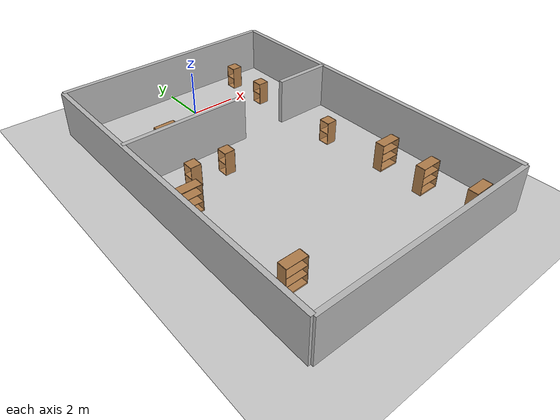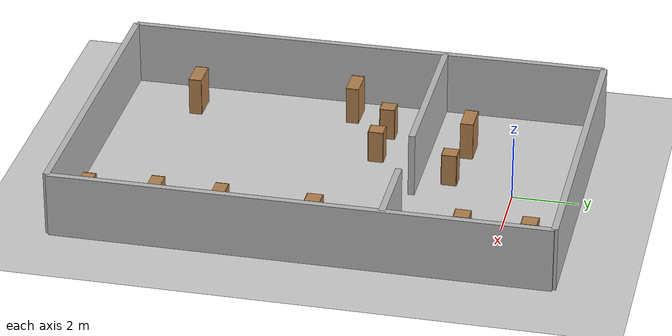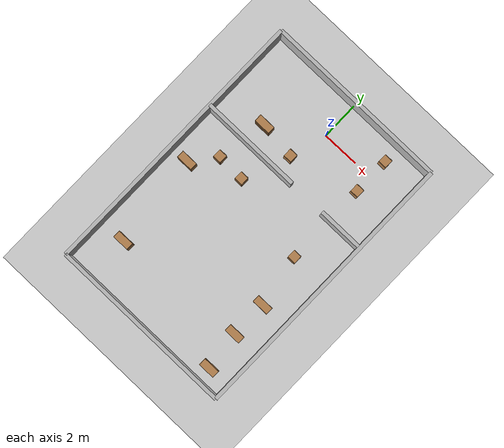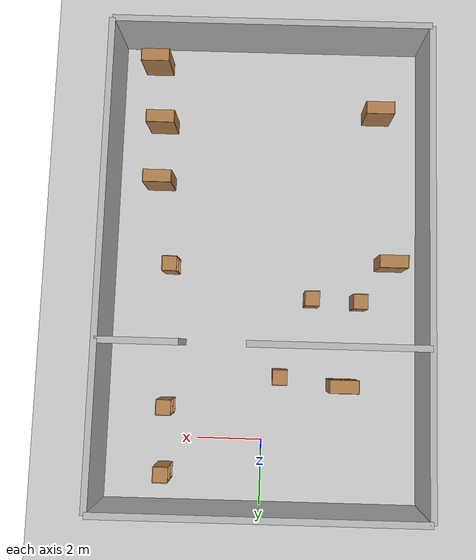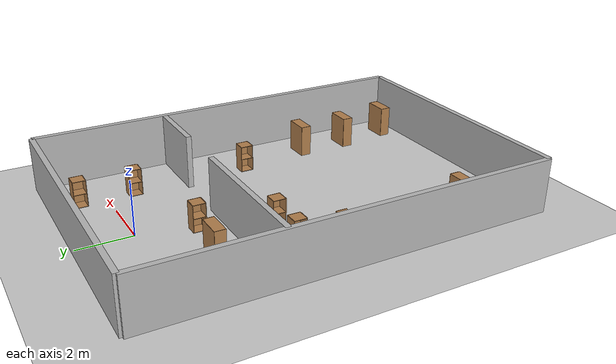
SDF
<sdf version="1.4">
 <world name="default">
  <physics type="ode">
   <gravity>0.000000 0.000000 -9.810000</gravity>
   <ode>
    <solver><type>quick</type><iters>20</iters><sor>1.000000</sor></solver>
    <constraints>
     <cfm>0.000000</cfm>
     <erp>0.200000</erp>
     <contact_max_correcting_vel>100.000000</contact_max_correcting_vel>
     <contact_surface_layer>0.000000</contact_surface_layer>
    </constraints>
   </ode>
   <real_time_update_rate>1000.000000</real_time_update_rate>
   <max_step_size>0.001000</max_step_size>
   <real_time_factor>1.000000</real_time_factor>
   <max_contacts>20</max_contacts>
  </physics>
  <light name="sun" type="directional">
   <pose>0.000000 0.000000 10.000000 0.000000 0.000000 0.000000</pose>
   <diffuse>0.800000 0.800000 0.800000 1.000000</diffuse>
   <specular>0.200000 0.200000 0.200000 1.000000</specular>
   <attenuation>
    <range>1000.000000</range>
    <constant>0.900000</constant>
    <linear>0.010000</linear>
    <quadratic>0.001000</quadratic>
   </attenuation>
   <direction>0.500000 0.100000 -0.900000</direction>
  </light>
  <model name="ground_plane">
   <static>1</static>
   <link name="link">
    <collision name="collision">
     <geometry>
      <plane><normal>0.000000 0.000000 1.000000</normal><size>100.000000 100.000000</size></plane>
     </geometry>
     <surface><friction><ode><mu>100.000000</mu><mu2>50.000000</mu2></ode></friction></surface>
    </collision>
    <visual name="visual">
     <cast_shadows>0</cast_shadows>
     <geometry>
      <plane><normal>0.000000 0.000000 1.000000</normal><size>100.000000 100.000000</size></plane>
     </geometry>
     <material>
      <script><uri>file://media/materials/scripts/gazebo.material</uri><name>Gazebo/Grey</name></script>
     </material>
    </visual>
    <velocity_decay><linear>0.000000</linear><angular>0.000000</angular></velocity_decay>
   </link>
  </model>
  <model name="wall_1_model">
   <pose>0.0 -13.0 1.0 0.0 0.0 0.0</pose>
   <static>1</static>
   <link name="wall_1_body">
    <inertial>
     <mass>1.000000</mass>
     <inertia>
      <ixx>1.000000</ixx>
      <ixy>0.000000</ixy>
      <ixz>0.000000</ixz>
      <iyy>1.000000</iyy>
      <iyz>0.000000</iyz>
      <izz>1.000000</izz>
     </inertia>
    </inertial>
    <collision name="collision">
     <geometry><box><size>10.000000 0.200000 2.000000</size></box></geometry>
    </collision>
    <visual name="visual"><geometry><box><size>10.000000 0.200000 2.000000</size></box></geometry></visual>
    <velocity_decay><linear>0.000000</linear><angular>0.000000</angular></velocity_decay>
   </link>
  </model>
  <model name="wall_2_model">
   <pose>0.0 2.0 1.0 0.0 0.0 0.0</pose>
   <static>1</static>
   <link name="wall_2_body">
    <inertial>
     <mass>1.000000</mass>
     <inertia>
      <ixx>1.000000</ixx>
      <ixy>0.000000</ixy>
      <ixz>0.000000</ixz>
      <iyy>1.000000</iyy>
      <iyz>0.000000</iyz>
      <izz>1.000000</izz>
     </inertia>
    </inertial>
    <collision name="collision">
     <geometry><box><size>10.000000 0.200000 2.000000</size></box></geometry>
    </collision>
    <visual name="visual"><geometry><box><size>10.000000 0.200000 2.000000</size></box></geometry></visual>
    <velocity_decay><linear>0.000000</linear><angular>0.000000</angular></velocity_decay>
   </link>
  </model>
  <model name="wall_3_model">
   <pose>-5.0 -5.5 1.0 0.0 0.0 0.0</pose>
   <static>1</static>
   <link name="wall_3_body">
    <inertial>
     <mass>1.000000</mass>
     <inertia>
      <ixx>1.000000</ixx>
      <ixy>0.000000</ixy>
      <ixz>0.000000</ixz>
      <iyy>1.000000</iyy>
      <iyz>0.000000</iyz>
      <izz>1.000000</izz>
     </inertia>
    </inertial>
    <collision name="collision">
     <geometry><box><size>0.200000 15.000000 2.000000</size></box></geometry>
    </collision>
    <visual name="visual"><geometry><box><size>0.200000 15.000000 2.000000</size></box></geometry></visual>
    <velocity_decay><linear>0.000000</linear><angular>0.000000</angular></velocity_decay>
   </link>
  </model>
  <model name="wall_4_model">
   <pose>5.0 -5.5 1.0 0.0 0.0 0.0</pose>
   <static>1</static>
   <link name="wall_4_body">
    <inertial>
     <mass>1.000000</mass>
     <inertia>
      <ixx>1.000000</ixx>
      <ixy>0.000000</ixy>
      <ixz>0.000000</ixz>
      <iyy>1.000000</iyy>
      <iyz>0.000000</iyz>
      <izz>1.000000</izz>
     </inertia>
    </inertial>
    <collision name="collision">
     <geometry><box><size>0.200000 15.000000 2.000000</size></box></geometry>
    </collision>
    <visual name="visual"><geometry><box><size>0.200000 15.000000 2.000000</size></box></geometry></visual>
    <velocity_decay><linear>0.000000</linear><angular>0.000000</angular></velocity_decay>
   </link>
  </model>
  <model name="wall_5_model">
   <pose>-2.25 -3.0 1.0 0.0 0.0 0.0</pose>
   <static>1</static>
   <link name="wall_5_body">
    <inertial>
     <mass>1.000000</mass>
     <inertia>
      <ixx>1.000000</ixx>
      <ixy>0.000000</ixy>
      <ixz>0.000000</ixz>
      <iyy>1.000000</iyy>
      <iyz>0.000000</iyz>
      <izz>1.000000</izz>
     </inertia>
    </inertial>
    <collision name="collision">
     <geometry><box><size>5.500000 0.200000 2.000000</size></box></geometry>
    </collision>
    <visual name="visual"><geometry><box><size>5.500000 0.200000 2.000000</size></box></geometry></visual>
    <velocity_decay><linear>0.000000</linear><angular>0.000000</angular></velocity_decay>
   </link>
  </model>
  <model name="wall_6_model">
   <pose>3.75 -3.0 1.0 0.0 0.0 0.0</pose>
   <static>1</static>
   <link name="wall_6_body">
    <inertial>
     <mass>1.000000</mass>
     <inertia>
      <ixx>1.000000</ixx>
      <ixy>0.000000</ixy>
      <ixz>0.000000</ixz>
      <iyy>1.000000</iyy>
      <iyz>0.000000</iyz>
      <izz>1.000000</izz>
     </inertia>
    </inertial>
    <collision name="collision">
     <geometry><box><size>2.500000 0.200000 2.000000</size></box></geometry>
    </collision>
    <visual name="visual"><geometry><box><size>2.500000 0.200000 2.000000</size></box></geometry></visual>
    <velocity_decay><linear>0.000000</linear><angular>0.000000</angular></velocity_decay>
   </link>
  </model>
  <scene>
   <ambient>0.550000 0.550000 0.550000 1.000000</ambient>
   <background>0.700000 0.700000 0.700000 1.000000</background>
   <shadows>1</shadows>
  </scene>
  <model name="cabinet">
   <static>1</static>
   <link name="cabinet_bottom_plate">
    <inertial>
     <pose>0.000000 0.000000 -1.000000 0.000000 0.000000 0.000000</pose>
     <inertia>
      <ixx>2.050000</ixx>
      <ixy>0.000000</ixy>
      <ixz>0.000000</ixz>
      <iyy>2.050000</iyy>
      <iyz>0.000000</iyz>
      <izz>2.050000</izz>
     </inertia>
     <mass>25.000000</mass>
    </inertial>
    <collision name="cabinet_bottom_plate_geom">
     <pose>0.000000 0.000000 0.010000 0.000000 0.000000 0.000000</pose>
     <geometry><box><size>0.450000 0.450000 0.020000</size></box></geometry>
    </collision>
    <visual name="cabinet_bottom_plate_geom_visual">
     <pose>0.000000 0.000000 0.010000 0.000000 0.000000 0.000000</pose>
     <geometry><box><size>0.450000 0.450000 0.020000</size></box></geometry>
     <material>
      <script><uri>file://media/materials/scripts/gazebo.material</uri><name>Gazebo/Wood</name></script>
     </material>
    </visual>
    <collision name="cabinet_bottom_plate_geom_cabinet_back_plate">
     <pose>0.235000 0.000000 0.510000 0.000000 0.000000 0.000000</pose>
     <geometry><box><size>0.020000 0.450000 1.020000</size></box></geometry>
    </collision>
    <visual name="cabinet_bottom_plate_geom_cabinet_back_plate_visual">
     <pose>0.235000 0.000000 0.510000 0.000000 0.000000 0.000000</pose>
     <geometry><box><size>0.020000 0.450000 1.020000</size></box></geometry>
     <material>
      <script><uri>file://media/materials/scripts/gazebo.material</uri><name>Gazebo/Wood</name></script>
     </material>
    </visual>
    <collision name="cabinet_bottom_plate_geom_cabinet_left_plate">
     <pose>0.000000 0.235000 0.510000 0.000000 0.000000 0.000000</pose>
     <geometry><box><size>0.450000 0.020000 1.020000</size></box></geometry>
    </collision>
    <visual name="cabinet_bottom_plate_geom_cabinet_left_plate_visual">
     <pose>0.000000 0.235000 0.510000 0.000000 0.000000 0.000000</pose>
     <geometry><box><size>0.450000 0.020000 1.020000</size></box></geometry>
     <material>
      <script><uri>file://media/materials/scripts/gazebo.material</uri><name>Gazebo/Wood</name></script>
     </material>
    </visual>
    <collision name="cabinet_bottom_plate_geom_cabinet_middle_plate">
     <pose>0.000000 0.000000 0.510000 0.000000 0.000000 0.000000</pose>
     <geometry><box><size>0.450000 0.450000 0.020000</size></box></geometry>
    </collision>
    <visual name="cabinet_bottom_plate_geom_cabinet_middle_plate_visual">
     <pose>0.000000 0.000000 0.510000 0.000000 0.000000 0.000000</pose>
     <geometry><box><size>0.450000 0.450000 0.020000</size></box></geometry>
     <material>
      <script><uri>file://media/materials/scripts/gazebo.material</uri><name>Gazebo/Wood</name></script>
     </material>
    </visual>
    <collision name="cabinet_bottom_plate_geom_cabinet_right_plate">
     <pose>0.000000 -0.235000 0.510000 0.000000 0.000000 0.000000</pose>
     <geometry><box><size>0.450000 0.020000 1.020000</size></box></geometry>
    </collision>
    <visual name="cabinet_bottom_plate_geom_cabinet_right_plate_visual">
     <pose>0.000000 -0.235000 0.510000 0.000000 0.000000 0.000000</pose>
     <geometry><box><size>0.450000 0.020000 1.020000</size></box></geometry>
     <material>
      <script><uri>file://media/materials/scripts/gazebo.material</uri><name>Gazebo/Wood</name></script>
     </material>
    </visual>
    <collision name="cabinet_bottom_plate_geom_cabinet_top_plate">
     <pose>0.000000 0.000000 1.010000 0.000000 0.000000 0.000000</pose>
     <geometry><box><size>0.450000 0.450000 0.020000</size></box></geometry>
    </collision>
    <visual name="cabinet_bottom_plate_geom_cabinet_top_plate_visual">
     <pose>0.000000 0.000000 1.010000 0.000000 0.000000 0.000000</pose>
     <geometry><box><size>0.450000 0.450000 0.020000</size></box></geometry>
     <material>
      <script><uri>file://media/materials/scripts/gazebo.material</uri><name>Gazebo/Wood</name></script>
     </material>
    </visual>
    <velocity_decay><linear>0.000000</linear><angular>0.000000</angular></velocity_decay>
   </link>
   <pose>3.0 1.0 0.0 0.0 0.0 0.0</pose>
  </model>
  <model name="cabinet_0">
   <static>1</static>
   <link name="cabinet_bottom_plate">
    <inertial>
     <pose>0.000000 0.000000 -1.000000 0.000000 0.000000 0.000000</pose>
     <inertia>
      <ixx>2.050000</ixx>
      <ixy>0.000000</ixy>
      <ixz>0.000000</ixz>
      <iyy>2.050000</iyy>
      <iyz>0.000000</iyz>
      <izz>2.050000</izz>
     </inertia>
     <mass>25.000000</mass>
    </inertial>
    <collision name="cabinet_bottom_plate_geom">
     <pose>0.000000 0.000000 0.010000 0.000000 0.000000 0.000000</pose>
     <geometry><box><size>0.450000 0.450000 0.020000</size></box></geometry>
    </collision>
    <visual name="cabinet_bottom_plate_geom_visual">
     <pose>0.000000 0.000000 0.010000 0.000000 0.000000 0.000000</pose>
     <geometry><box><size>0.450000 0.450000 0.020000</size></box></geometry>
     <material>
      <script><uri>file://media/materials/scripts/gazebo.material</uri><name>Gazebo/Wood</name></script>
     </material>
    </visual>
    <collision name="cabinet_bottom_plate_geom_cabinet_back_plate">
     <pose>0.235000 0.000000 0.510000 0.000000 0.000000 0.000000</pose>
     <geometry><box><size>0.020000 0.450000 1.020000</size></box></geometry>
    </collision>
    <visual name="cabinet_bottom_plate_geom_cabinet_back_plate_visual">
     <pose>0.235000 0.000000 0.510000 0.000000 0.000000 0.000000</pose>
     <geometry><box><size>0.020000 0.450000 1.020000</size></box></geometry>
     <material>
      <script><uri>file://media/materials/scripts/gazebo.material</uri><name>Gazebo/Wood</name></script>
     </material>
    </visual>
    <collision name="cabinet_bottom_plate_geom_cabinet_left_plate">
     <pose>0.000000 0.235000 0.510000 0.000000 0.000000 0.000000</pose>
     <geometry><box><size>0.450000 0.020000 1.020000</size></box></geometry>
    </collision>
    <visual name="cabinet_bottom_plate_geom_cabinet_left_plate_visual">
     <pose>0.000000 0.235000 0.510000 0.000000 0.000000 0.000000</pose>
     <geometry><box><size>0.450000 0.020000 1.020000</size></box></geometry>
     <material>
      <script><uri>file://media/materials/scripts/gazebo.material</uri><name>Gazebo/Wood</name></script>
     </material>
    </visual>
    <collision name="cabinet_bottom_plate_geom_cabinet_middle_plate">
     <pose>0.000000 0.000000 0.510000 0.000000 0.000000 0.000000</pose>
     <geometry><box><size>0.450000 0.450000 0.020000</size></box></geometry>
    </collision>
    <visual name="cabinet_bottom_plate_geom_cabinet_middle_plate_visual">
     <pose>0.000000 0.000000 0.510000 0.000000 0.000000 0.000000</pose>
     <geometry><box><size>0.450000 0.450000 0.020000</size></box></geometry>
     <material>
      <script><uri>file://media/materials/scripts/gazebo.material</uri><name>Gazebo/Wood</name></script>
     </material>
    </visual>
    <collision name="cabinet_bottom_plate_geom_cabinet_right_plate">
     <pose>0.000000 -0.235000 0.510000 0.000000 0.000000 0.000000</pose>
     <geometry><box><size>0.450000 0.020000 1.020000</size></box></geometry>
    </collision>
    <visual name="cabinet_bottom_plate_geom_cabinet_right_plate_visual">
     <pose>0.000000 -0.235000 0.510000 0.000000 0.000000 0.000000</pose>
     <geometry><box><size>0.450000 0.020000 1.020000</size></box></geometry>
     <material>
      <script><uri>file://media/materials/scripts/gazebo.material</uri><name>Gazebo/Wood</name></script>
     </material>
    </visual>
    <collision name="cabinet_bottom_plate_geom_cabinet_top_plate">
     <pose>0.000000 0.000000 1.010000 0.000000 0.000000 0.000000</pose>
     <geometry><box><size>0.450000 0.450000 0.020000</size></box></geometry>
    </collision>
    <visual name="cabinet_bottom_plate_geom_cabinet_top_plate_visual">
     <pose>0.000000 0.000000 1.010000 0.000000 0.000000 0.000000</pose>
     <geometry><box><size>0.450000 0.450000 0.020000</size></box></geometry>
     <material>
      <script><uri>file://media/materials/scripts/gazebo.material</uri><name>Gazebo/Wood</name></script>
     </material>
    </visual>
    <velocity_decay><linear>0.000000</linear><angular>0.000000</angular></velocity_decay>
   </link>
   <pose>3.015730 -5.43949 0.0 0.0 0.0 0.0</pose>
  </model>
  <model name="bookshelf">
   <static>1</static>
   <link name="link">
    <inertial><mass>1.000000</mass></inertial>
    <collision name="back">
     <pose>0.000000 0.005000 0.600000 0.000000 0.000000 0.000000</pose>
     <geometry><box><size>0.900000 0.010000 1.200000</size></box></geometry>
    </collision>
    <visual name="visual1">
     <pose>0.000000 0.005000 0.600000 0.000000 0.000000 0.000000</pose>
     <geometry><box><size>0.900000 0.010000 1.200000</size></box></geometry>
     <material>
      <script><uri>file://media/materials/scripts/gazebo.material</uri><name>Gazebo/Wood</name></script>
     </material>
    </visual>
    <collision name="left_side">
     <pose>0.450000 -0.195000 0.600000 0.000000 0.000000 0.000000</pose>
     <geometry><box><size>0.020000 0.400000 1.200000</size></box></geometry>
    </collision>
    <visual name="visual2">
     <pose>0.450000 -0.195000 0.600000 0.000000 0.000000 0.000000</pose>
     <geometry><box><size>0.020000 0.400000 1.200000</size></box></geometry>
     <material>
      <script><uri>file://media/materials/scripts/gazebo.material</uri><name>Gazebo/Wood</name></script>
     </material>
    </visual>
    <collision name="right_side">
     <pose>-0.450000 -0.195000 0.600000 0.000000 0.000000 0.000000</pose>
     <geometry><box><size>0.020000 0.400000 1.200000</size></box></geometry>
    </collision>
    <visual name="visual3">
     <pose>-0.450000 -0.195000 0.600000 0.000000 0.000000 0.000000</pose>
     <geometry><box><size>0.020000 0.400000 1.200000</size></box></geometry>
     <material>
      <script><uri>file://media/materials/scripts/gazebo.material</uri><name>Gazebo/Wood</name></script>
     </material>
    </visual>
    <collision name="bottom">
     <pose>0.000000 -0.195000 0.030000 0.000000 0.000000 0.000000</pose>
     <geometry><box><size>0.880000 0.400000 0.060000</size></box></geometry>
    </collision>
    <visual name="visual4">
     <pose>0.000000 -0.195000 0.030000 0.000000 0.000000 0.000000</pose>
     <geometry><box><size>0.880000 0.400000 0.060000</size></box></geometry>
     <material>
      <script><uri>file://media/materials/scripts/gazebo.material</uri><name>Gazebo/Wood</name></script>
     </material>
    </visual>
    <collision name="top">
     <pose>0.000000 -0.195000 1.190000 0.000000 0.000000 0.000000</pose>
     <geometry><box><size>0.880000 0.400000 0.020000</size></box></geometry>
    </collision>
    <visual name="visual5">
     <pose>0.000000 -0.195000 1.190000 0.000000 0.000000 0.000000</pose>
     <geometry><box><size>0.880000 0.400000 0.020000</size></box></geometry>
     <material>
      <script><uri>file://media/materials/scripts/gazebo.material</uri><name>Gazebo/Wood</name></script>
     </material>
    </visual>
    <collision name="low_shelf">
     <pose>0.000000 -0.195000 0.430000 0.000000 0.000000 0.000000</pose>
     <geometry><box><size>0.880000 0.400000 0.020000</size></box></geometry>
    </collision>
    <visual name="visual6">
     <pose>0.000000 -0.195000 0.430000 0.000000 0.000000 0.000000</pose>
     <geometry><box><size>0.880000 0.400000 0.020000</size></box></geometry>
     <material>
      <script><uri>file://media/materials/scripts/gazebo.material</uri><name>Gazebo/Wood</name></script>
     </material>
    </visual>
    <collision name="high_shelf">
     <pose>0.000000 -0.195000 0.800000 0.000000 0.000000 0.000000</pose>
     <geometry><box><size>0.880000 0.400000 0.020000</size></box></geometry>
    </collision>
    <visual name="visual7">
     <pose>0.000000 -0.195000 0.800000 0.000000 0.000000 0.000000</pose>
     <geometry><box><size>0.880000 0.400000 0.020000</size></box></geometry>
     <material>
      <script><uri>file://media/materials/scripts/gazebo.material</uri><name>Gazebo/Wood</name></script>
     </material>
    </visual>
    <velocity_decay><linear>0.000000</linear><angular>0.000000</angular></velocity_decay>
   </link>
   <pose>3.5 -9.95401 0.0 0.0 0.0 0.0</pose>
  </model>
  <model name="bookshelf_0">
   <static>1</static>
   <link name="link">
    <inertial><mass>1.000000</mass></inertial>
    <collision name="back">
     <pose>0.000000 0.005000 0.600000 0.000000 0.000000 0.000000</pose>
     <geometry><box><size>0.900000 0.010000 1.200000</size></box></geometry>
    </collision>
    <visual name="visual1">
     <pose>0.000000 0.005000 0.600000 0.000000 0.000000 0.000000</pose>
     <geometry><box><size>0.900000 0.010000 1.200000</size></box></geometry>
     <material>
      <script><uri>file://media/materials/scripts/gazebo.material</uri><name>Gazebo/Wood</name></script>
     </material>
    </visual>
    <collision name="left_side">
     <pose>0.450000 -0.195000 0.600000 0.000000 0.000000 0.000000</pose>
     <geometry><box><size>0.020000 0.400000 1.200000</size></box></geometry>
    </collision>
    <visual name="visual2">
     <pose>0.450000 -0.195000 0.600000 0.000000 0.000000 0.000000</pose>
     <geometry><box><size>0.020000 0.400000 1.200000</size></box></geometry>
     <material>
      <script><uri>file://media/materials/scripts/gazebo.material</uri><name>Gazebo/Wood</name></script>
     </material>
    </visual>
    <collision name="right_side">
     <pose>-0.450000 -0.195000 0.600000 0.000000 0.000000 0.000000</pose>
     <geometry><box><size>0.020000 0.400000 1.200000</size></box></geometry>
    </collision>
    <visual name="visual3">
     <pose>-0.450000 -0.195000 0.600000 0.000000 0.000000 0.000000</pose>
     <geometry><box><size>0.020000 0.400000 1.200000</size></box></geometry>
     <material>
      <script><uri>file://media/materials/scripts/gazebo.material</uri><name>Gazebo/Wood</name></script>
     </material>
    </visual>
    <collision name="bottom">
     <pose>0.000000 -0.195000 0.030000 0.000000 0.000000 0.000000</pose>
     <geometry><box><size>0.880000 0.400000 0.060000</size></box></geometry>
    </collision>
    <visual name="visual4">
     <pose>0.000000 -0.195000 0.030000 0.000000 0.000000 0.000000</pose>
     <geometry><box><size>0.880000 0.400000 0.060000</size></box></geometry>
     <material>
      <script><uri>file://media/materials/scripts/gazebo.material</uri><name>Gazebo/Wood</name></script>
     </material>
    </visual>
    <collision name="top">
     <pose>0.000000 -0.195000 1.190000 0.000000 0.000000 0.000000</pose>
     <geometry><box><size>0.880000 0.400000 0.020000</size></box></geometry>
    </collision>
    <visual name="visual5">
     <pose>0.000000 -0.195000 1.190000 0.000000 0.000000 0.000000</pose>
     <geometry><box><size>0.880000 0.400000 0.020000</size></box></geometry>
     <material>
      <script><uri>file://media/materials/scripts/gazebo.material</uri><name>Gazebo/Wood</name></script>
     </material>
    </visual>
    <collision name="low_shelf">
     <pose>0.000000 -0.195000 0.430000 0.000000 0.000000 0.000000</pose>
     <geometry><box><size>0.880000 0.400000 0.020000</size></box></geometry>
    </collision>
    <visual name="visual6">
     <pose>0.000000 -0.195000 0.430000 0.000000 0.000000 0.000000</pose>
     <geometry><box><size>0.880000 0.400000 0.020000</size></box></geometry>
     <material>
      <script><uri>file://media/materials/scripts/gazebo.material</uri><name>Gazebo/Wood</name></script>
     </material>
    </visual>
    <collision name="high_shelf">
     <pose>0.000000 -0.195000 0.800000 0.000000 0.000000 0.000000</pose>
     <geometry><box><size>0.880000 0.400000 0.020000</size></box></geometry>
    </collision>
    <visual name="visual7">
     <pose>0.000000 -0.195000 0.800000 0.000000 0.000000 0.000000</pose>
     <geometry><box><size>0.880000 0.400000 0.020000</size></box></geometry>
     <material>
      <script><uri>file://media/materials/scripts/gazebo.material</uri><name>Gazebo/Wood</name></script>
     </material>
    </visual>
    <velocity_decay><linear>0.000000</linear><angular>0.000000</angular></velocity_decay>
   </link>
   <pose>-2.49657 -1.57894 0.0 0.0 0.0 0.0</pose>
  </model>
  <model name="cabinet_1">
   <static>1</static>
   <link name="cabinet_bottom_plate">
    <inertial>
     <pose>0.000000 0.000000 -1.000000 0.000000 0.000000 0.000000</pose>
     <inertia>
      <ixx>2.050000</ixx>
      <ixy>0.000000</ixy>
      <ixz>0.000000</ixz>
      <iyy>2.050000</iyy>
      <iyz>0.000000</iyz>
      <izz>2.050000</izz>
     </inertia>
     <mass>25.000000</mass>
    </inertial>
    <collision name="cabinet_bottom_plate_geom">
     <pose>0.000000 0.000000 0.010000 0.000000 0.000000 0.000000</pose>
     <geometry><box><size>0.450000 0.450000 0.020000</size></box></geometry>
    </collision>
    <visual name="cabinet_bottom_plate_geom_visual">
     <pose>0.000000 0.000000 0.010000 0.000000 0.000000 0.000000</pose>
     <geometry><box><size>0.450000 0.450000 0.020000</size></box></geometry>
     <material>
      <script><uri>file://media/materials/scripts/gazebo.material</uri><name>Gazebo/Wood</name></script>
     </material>
    </visual>
    <collision name="cabinet_bottom_plate_geom_cabinet_back_plate">
     <pose>0.235000 0.000000 0.510000 0.000000 0.000000 0.000000</pose>
     <geometry><box><size>0.020000 0.450000 1.020000</size></box></geometry>
    </collision>
    <visual name="cabinet_bottom_plate_geom_cabinet_back_plate_visual">
     <pose>0.235000 0.000000 0.510000 0.000000 0.000000 0.000000</pose>
     <geometry><box><size>0.020000 0.450000 1.020000</size></box></geometry>
     <material>
      <script><uri>file://media/materials/scripts/gazebo.material</uri><name>Gazebo/Wood</name></script>
     </material>
    </visual>
    <collision name="cabinet_bottom_plate_geom_cabinet_left_plate">
     <pose>0.000000 0.235000 0.510000 0.000000 0.000000 0.000000</pose>
     <geometry><box><size>0.450000 0.020000 1.020000</size></box></geometry>
    </collision>
    <visual name="cabinet_bottom_plate_geom_cabinet_left_plate_visual">
     <pose>0.000000 0.235000 0.510000 0.000000 0.000000 0.000000</pose>
     <geometry><box><size>0.450000 0.020000 1.020000</size></box></geometry>
     <material>
      <script><uri>file://media/materials/scripts/gazebo.material</uri><name>Gazebo/Wood</name></script>
     </material>
    </visual>
    <collision name="cabinet_bottom_plate_geom_cabinet_middle_plate">
     <pose>0.000000 0.000000 0.510000 0.000000 0.000000 0.000000</pose>
     <geometry><box><size>0.450000 0.450000 0.020000</size></box></geometry>
    </collision>
    <visual name="cabinet_bottom_plate_geom_cabinet_middle_plate_visual">
     <pose>0.000000 0.000000 0.510000 0.000000 0.000000 0.000000</pose>
     <geometry><box><size>0.450000 0.450000 0.020000</size></box></geometry>
     <material>
      <script><uri>file://media/materials/scripts/gazebo.material</uri><name>Gazebo/Wood</name></script>
     </material>
    </visual>
    <collision name="cabinet_bottom_plate_geom_cabinet_right_plate">
     <pose>0.000000 -0.235000 0.510000 0.000000 0.000000 0.000000</pose>
     <geometry><box><size>0.450000 0.020000 1.020000</size></box></geometry>
    </collision>
    <visual name="cabinet_bottom_plate_geom_cabinet_right_plate_visual">
     <pose>0.000000 -0.235000 0.510000 0.000000 0.000000 0.000000</pose>
     <geometry><box><size>0.450000 0.020000 1.020000</size></box></geometry>
     <material>
      <script><uri>file://media/materials/scripts/gazebo.material</uri><name>Gazebo/Wood</name></script>
     </material>
    </visual>
    <collision name="cabinet_bottom_plate_geom_cabinet_top_plate">
     <pose>0.000000 0.000000 1.010000 0.000000 0.000000 0.000000</pose>
     <geometry><box><size>0.450000 0.450000 0.020000</size></box></geometry>
    </collision>
    <visual name="cabinet_bottom_plate_geom_cabinet_top_plate_visual">
     <pose>0.000000 0.000000 1.010000 0.000000 0.000000 0.000000</pose>
     <geometry><box><size>0.450000 0.450000 0.020000</size></box></geometry>
     <material>
      <script><uri>file://media/materials/scripts/gazebo.material</uri><name>Gazebo/Wood</name></script>
     </material>
    </visual>
    <velocity_decay><linear>0.000000</linear><angular>0.000000</angular></velocity_decay>
   </link>
   <pose>-3.0 -4.40005 0.0 0.0 0.0 0.0</pose>
  </model>
  <model name="cabinet_2">
   <static>1</static>
   <link name="cabinet_bottom_plate">
    <inertial>
     <pose>0.000000 0.000000 -1.000000 0.000000 0.000000 0.000000</pose>
     <inertia>
      <ixx>2.050000</ixx>
      <ixy>0.000000</ixy>
      <ixz>0.000000</ixz>
      <iyy>2.050000</iyy>
      <iyz>0.000000</iyz>
      <izz>2.050000</izz>
     </inertia>
     <mass>25.000000</mass>
    </inertial>
    <collision name="cabinet_bottom_plate_geom">
     <pose>0.000000 0.000000 0.010000 0.000000 0.000000 0.000000</pose>
     <geometry><box><size>0.450000 0.450000 0.020000</size></box></geometry>
    </collision>
    <visual name="cabinet_bottom_plate_geom_visual">
     <pose>0.000000 0.000000 0.010000 0.000000 0.000000 0.000000</pose>
     <geometry><box><size>0.450000 0.450000 0.020000</size></box></geometry>
     <material>
      <script><uri>file://media/materials/scripts/gazebo.material</uri><name>Gazebo/Wood</name></script>
     </material>
    </visual>
    <collision name="cabinet_bottom_plate_geom_cabinet_back_plate">
     <pose>0.235000 0.000000 0.510000 0.000000 0.000000 0.000000</pose>
     <geometry><box><size>0.020000 0.450000 1.020000</size></box></geometry>
    </collision>
    <visual name="cabinet_bottom_plate_geom_cabinet_back_plate_visual">
     <pose>0.235000 0.000000 0.510000 0.000000 0.000000 0.000000</pose>
     <geometry><box><size>0.020000 0.450000 1.020000</size></box></geometry>
     <material>
      <script><uri>file://media/materials/scripts/gazebo.material</uri><name>Gazebo/Wood</name></script>
     </material>
    </visual>
    <collision name="cabinet_bottom_plate_geom_cabinet_left_plate">
     <pose>0.000000 0.235000 0.510000 0.000000 0.000000 0.000000</pose>
     <geometry><box><size>0.450000 0.020000 1.020000</size></box></geometry>
    </collision>
    <visual name="cabinet_bottom_plate_geom_cabinet_left_plate_visual">
     <pose>0.000000 0.235000 0.510000 0.000000 0.000000 0.000000</pose>
     <geometry><box><size>0.450000 0.020000 1.020000</size></box></geometry>
     <material>
      <script><uri>file://media/materials/scripts/gazebo.material</uri><name>Gazebo/Wood</name></script>
     </material>
    </visual>
    <collision name="cabinet_bottom_plate_geom_cabinet_middle_plate">
     <pose>0.000000 0.000000 0.510000 0.000000 0.000000 0.000000</pose>
     <geometry><box><size>0.450000 0.450000 0.020000</size></box></geometry>
    </collision>
    <visual name="cabinet_bottom_plate_geom_cabinet_middle_plate_visual">
     <pose>0.000000 0.000000 0.510000 0.000000 0.000000 0.000000</pose>
     <geometry><box><size>0.450000 0.450000 0.020000</size></box></geometry>
     <material>
      <script><uri>file://media/materials/scripts/gazebo.material</uri><name>Gazebo/Wood</name></script>
     </material>
    </visual>
    <collision name="cabinet_bottom_plate_geom_cabinet_right_plate">
     <pose>0.000000 -0.235000 0.510000 0.000000 0.000000 0.000000</pose>
     <geometry><box><size>0.450000 0.020000 1.020000</size></box></geometry>
    </collision>
    <visual name="cabinet_bottom_plate_geom_cabinet_right_plate_visual">
     <pose>0.000000 -0.235000 0.510000 0.000000 0.000000 0.000000</pose>
     <geometry><box><size>0.450000 0.020000 1.020000</size></box></geometry>
     <material>
      <script><uri>file://media/materials/scripts/gazebo.material</uri><name>Gazebo/Wood</name></script>
     </material>
    </visual>
    <collision name="cabinet_bottom_plate_geom_cabinet_top_plate">
     <pose>0.000000 0.000000 1.010000 0.000000 0.000000 0.000000</pose>
     <geometry><box><size>0.450000 0.450000 0.020000</size></box></geometry>
    </collision>
    <visual name="cabinet_bottom_plate_geom_cabinet_top_plate_visual">
     <pose>0.000000 0.000000 1.010000 0.000000 0.000000 0.000000</pose>
     <geometry><box><size>0.450000 0.450000 0.020000</size></box></geometry>
     <material>
      <script><uri>file://media/materials/scripts/gazebo.material</uri><name>Gazebo/Wood</name></script>
     </material>
    </visual>
    <velocity_decay><linear>0.000000</linear><angular>0.000000</angular></velocity_decay>
   </link>
   <pose>-1.49183 -4.45622 0.0 0.0 0.0 0.0</pose>
  </model>
  <model name="cabinet_3">
   <static>1</static>
   <link name="cabinet_bottom_plate">
    <inertial>
     <pose>0.000000 0.000000 -1.000000 0.000000 0.000000 0.000000</pose>
     <inertia>
      <ixx>2.050000</ixx>
      <ixy>0.000000</ixy>
      <ixz>0.000000</ixz>
      <iyy>2.050000</iyy>
      <iyz>0.000000</iyz>
      <izz>2.050000</izz>
     </inertia>
     <mass>25.000000</mass>
    </inertial>
    <collision name="cabinet_bottom_plate_geom">
     <pose>0.000000 0.000000 0.010000 0.000000 0.000000 0.000000</pose>
     <geometry><box><size>0.450000 0.450000 0.020000</size></box></geometry>
    </collision>
    <visual name="cabinet_bottom_plate_geom_visual">
     <pose>0.000000 0.000000 0.010000 0.000000 0.000000 0.000000</pose>
     <geometry><box><size>0.450000 0.450000 0.020000</size></box></geometry>
     <material>
      <script><uri>file://media/materials/scripts/gazebo.material</uri><name>Gazebo/Wood</name></script>
     </material>
    </visual>
    <collision name="cabinet_bottom_plate_geom_cabinet_back_plate">
     <pose>0.235000 0.000000 0.510000 0.000000 0.000000 0.000000</pose>
     <geometry><box><size>0.020000 0.450000 1.020000</size></box></geometry>
    </collision>
    <visual name="cabinet_bottom_plate_geom_cabinet_back_plate_visual">
     <pose>0.235000 0.000000 0.510000 0.000000 0.000000 0.000000</pose>
     <geometry><box><size>0.020000 0.450000 1.020000</size></box></geometry>
     <material>
      <script><uri>file://media/materials/scripts/gazebo.material</uri><name>Gazebo/Wood</name></script>
     </material>
    </visual>
    <collision name="cabinet_bottom_plate_geom_cabinet_left_plate">
     <pose>0.000000 0.235000 0.510000 0.000000 0.000000 0.000000</pose>
     <geometry><box><size>0.450000 0.020000 1.020000</size></box></geometry>
    </collision>
    <visual name="cabinet_bottom_plate_geom_cabinet_left_plate_visual">
     <pose>0.000000 0.235000 0.510000 0.000000 0.000000 0.000000</pose>
     <geometry><box><size>0.450000 0.020000 1.020000</size></box></geometry>
     <material>
      <script><uri>file://media/materials/scripts/gazebo.material</uri><name>Gazebo/Wood</name></script>
     </material>
    </visual>
    <collision name="cabinet_bottom_plate_geom_cabinet_middle_plate">
     <pose>0.000000 0.000000 0.510000 0.000000 0.000000 0.000000</pose>
     <geometry><box><size>0.450000 0.450000 0.020000</size></box></geometry>
    </collision>
    <visual name="cabinet_bottom_plate_geom_cabinet_middle_plate_visual">
     <pose>0.000000 0.000000 0.510000 0.000000 0.000000 0.000000</pose>
     <geometry><box><size>0.450000 0.450000 0.020000</size></box></geometry>
     <material>
      <script><uri>file://media/materials/scripts/gazebo.material</uri><name>Gazebo/Wood</name></script>
     </material>
    </visual>
    <collision name="cabinet_bottom_plate_geom_cabinet_right_plate">
     <pose>0.000000 -0.235000 0.510000 0.000000 0.000000 0.000000</pose>
     <geometry><box><size>0.450000 0.020000 1.020000</size></box></geometry>
    </collision>
    <visual name="cabinet_bottom_plate_geom_cabinet_right_plate_visual">
     <pose>0.000000 -0.235000 0.510000 0.000000 0.000000 0.000000</pose>
     <geometry><box><size>0.450000 0.020000 1.020000</size></box></geometry>
     <material>
      <script><uri>file://media/materials/scripts/gazebo.material</uri><name>Gazebo/Wood</name></script>
     </material>
    </visual>
    <collision name="cabinet_bottom_plate_geom_cabinet_top_plate">
     <pose>0.000000 0.000000 1.010000 0.000000 0.000000 0.000000</pose>
     <geometry><box><size>0.450000 0.450000 0.020000</size></box></geometry>
    </collision>
    <visual name="cabinet_bottom_plate_geom_cabinet_top_plate_visual">
     <pose>0.000000 0.000000 1.010000 0.000000 0.000000 0.000000</pose>
     <geometry><box><size>0.450000 0.450000 0.020000</size></box></geometry>
     <material>
      <script><uri>file://media/materials/scripts/gazebo.material</uri><name>Gazebo/Wood</name></script>
     </material>
    </visual>
    <velocity_decay><linear>0.000000</linear><angular>0.000000</angular></velocity_decay>
   </link>
   <pose>3.0 -1.0 0.0 0.0 0.0 0.0</pose>
  </model>
  <model name="bookshelf_3">
   <static>1</static>
   <link name="link">
    <inertial><mass>1.000000</mass></inertial>
    <collision name="back">
     <pose>0.000000 0.005000 0.600000 0.000000 0.000000 0.000000</pose>
     <geometry><box><size>0.900000 0.010000 1.200000</size></box></geometry>
    </collision>
    <visual name="visual1">
     <pose>0.000000 0.005000 0.600000 0.000000 0.000000 0.000000</pose>
     <geometry><box><size>0.900000 0.010000 1.200000</size></box></geometry>
     <material>
      <script><uri>file://media/materials/scripts/gazebo.material</uri><name>Gazebo/Wood</name></script>
     </material>
    </visual>
    <collision name="left_side">
     <pose>0.450000 -0.195000 0.600000 0.000000 0.000000 0.000000</pose>
     <geometry><box><size>0.020000 0.400000 1.200000</size></box></geometry>
    </collision>
    <visual name="visual2">
     <pose>0.450000 -0.195000 0.600000 0.000000 0.000000 0.000000</pose>
     <geometry><box><size>0.020000 0.400000 1.200000</size></box></geometry>
     <material>
      <script><uri>file://media/materials/scripts/gazebo.material</uri><name>Gazebo/Wood</name></script>
     </material>
    </visual>
    <collision name="right_side">
     <pose>-0.450000 -0.195000 0.600000 0.000000 0.000000 0.000000</pose>
     <geometry><box><size>0.020000 0.400000 1.200000</size></box></geometry>
    </collision>
    <visual name="visual3">
     <pose>-0.450000 -0.195000 0.600000 0.000000 0.000000 0.000000</pose>
     <geometry><box><size>0.020000 0.400000 1.200000</size></box></geometry>
     <material>
      <script><uri>file://media/materials/scripts/gazebo.material</uri><name>Gazebo/Wood</name></script>
     </material>
    </visual>
    <collision name="bottom">
     <pose>0.000000 -0.195000 0.030000 0.000000 0.000000 0.000000</pose>
     <geometry><box><size>0.880000 0.400000 0.060000</size></box></geometry>
    </collision>
    <visual name="visual4">
     <pose>0.000000 -0.195000 0.030000 0.000000 0.000000 0.000000</pose>
     <geometry><box><size>0.880000 0.400000 0.060000</size></box></geometry>
     <material>
      <script><uri>file://media/materials/scripts/gazebo.material</uri><name>Gazebo/Wood</name></script>
     </material>
    </visual>
    <collision name="top">
     <pose>0.000000 -0.195000 1.190000 0.000000 0.000000 0.000000</pose>
     <geometry><box><size>0.880000 0.400000 0.020000</size></box></geometry>
    </collision>
    <visual name="visual5">
     <pose>0.000000 -0.195000 1.190000 0.000000 0.000000 0.000000</pose>
     <geometry><box><size>0.880000 0.400000 0.020000</size></box></geometry>
     <material>
      <script><uri>file://media/materials/scripts/gazebo.material</uri><name>Gazebo/Wood</name></script>
     </material>
    </visual>
    <collision name="low_shelf">
     <pose>0.000000 -0.195000 0.430000 0.000000 0.000000 0.000000</pose>
     <geometry><box><size>0.880000 0.400000 0.020000</size></box></geometry>
    </collision>
    <visual name="visual6">
     <pose>0.000000 -0.195000 0.430000 0.000000 0.000000 0.000000</pose>
     <geometry><box><size>0.880000 0.400000 0.020000</size></box></geometry>
     <material>
      <script><uri>file://media/materials/scripts/gazebo.material</uri><name>Gazebo/Wood</name></script>
     </material>
    </visual>
    <collision name="high_shelf">
     <pose>0.000000 -0.195000 0.800000 0.000000 0.000000 0.000000</pose>
     <geometry><box><size>0.880000 0.400000 0.020000</size></box></geometry>
    </collision>
    <visual name="visual7">
     <pose>0.000000 -0.195000 0.800000 0.000000 0.000000 0.000000</pose>
     <geometry><box><size>0.880000 0.400000 0.020000</size></box></geometry>
     <material>
      <script><uri>file://media/materials/scripts/gazebo.material</uri><name>Gazebo/Wood</name></script>
     </material>
    </visual>
    <velocity_decay><linear>0.000000</linear><angular>0.000000</angular></velocity_decay>
   </link>
   <pose>3.75055 -12.0 0.0 0.0 0.0 0.0</pose>
  </model>
  <model name="bookshelf_4">
   <static>1</static>
   <link name="link">
    <inertial><mass>1.000000</mass></inertial>
    <collision name="back">
     <pose>0.000000 0.005000 0.600000 0.000000 0.000000 0.000000</pose>
     <geometry><box><size>0.900000 0.010000 1.200000</size></box></geometry>
    </collision>
    <visual name="visual1">
     <pose>0.000000 0.005000 0.600000 0.000000 0.000000 0.000000</pose>
     <geometry><box><size>0.900000 0.010000 1.200000</size></box></geometry>
     <material>
      <script><uri>file://media/materials/scripts/gazebo.material</uri><name>Gazebo/Wood</name></script>
     </material>
    </visual>
    <collision name="left_side">
     <pose>0.450000 -0.195000 0.600000 0.000000 0.000000 0.000000</pose>
     <geometry><box><size>0.020000 0.400000 1.200000</size></box></geometry>
    </collision>
    <visual name="visual2">
     <pose>0.450000 -0.195000 0.600000 0.000000 0.000000 0.000000</pose>
     <geometry><box><size>0.020000 0.400000 1.200000</size></box></geometry>
     <material>
      <script><uri>file://media/materials/scripts/gazebo.material</uri><name>Gazebo/Wood</name></script>
     </material>
    </visual>
    <collision name="right_side">
     <pose>-0.450000 -0.195000 0.600000 0.000000 0.000000 0.000000</pose>
     <geometry><box><size>0.020000 0.400000 1.200000</size></box></geometry>
    </collision>
    <visual name="visual3">
     <pose>-0.450000 -0.195000 0.600000 0.000000 0.000000 0.000000</pose>
     <geometry><box><size>0.020000 0.400000 1.200000</size></box></geometry>
     <material>
      <script><uri>file://media/materials/scripts/gazebo.material</uri><name>Gazebo/Wood</name></script>
     </material>
    </visual>
    <collision name="bottom">
     <pose>0.000000 -0.195000 0.030000 0.000000 0.000000 0.000000</pose>
     <geometry><box><size>0.880000 0.400000 0.060000</size></box></geometry>
    </collision>
    <visual name="visual4">
     <pose>0.000000 -0.195000 0.030000 0.000000 0.000000 0.000000</pose>
     <geometry><box><size>0.880000 0.400000 0.060000</size></box></geometry>
     <material>
      <script><uri>file://media/materials/scripts/gazebo.material</uri><name>Gazebo/Wood</name></script>
     </material>
    </visual>
    <collision name="top">
     <pose>0.000000 -0.195000 1.190000 0.000000 0.000000 0.000000</pose>
     <geometry><box><size>0.880000 0.400000 0.020000</size></box></geometry>
    </collision>
    <visual name="visual5">
     <pose>0.000000 -0.195000 1.190000 0.000000 0.000000 0.000000</pose>
     <geometry><box><size>0.880000 0.400000 0.020000</size></box></geometry>
     <material>
      <script><uri>file://media/materials/scripts/gazebo.material</uri><name>Gazebo/Wood</name></script>
     </material>
    </visual>
    <collision name="low_shelf">
     <pose>0.000000 -0.195000 0.430000 0.000000 0.000000 0.000000</pose>
     <geometry><box><size>0.880000 0.400000 0.020000</size></box></geometry>
    </collision>
    <visual name="visual6">
     <pose>0.000000 -0.195000 0.430000 0.000000 0.000000 0.000000</pose>
     <geometry><box><size>0.880000 0.400000 0.020000</size></box></geometry>
     <material>
      <script><uri>file://media/materials/scripts/gazebo.material</uri><name>Gazebo/Wood</name></script>
     </material>
    </visual>
    <collision name="high_shelf">
     <pose>0.000000 -0.195000 0.800000 0.000000 0.000000 0.000000</pose>
     <geometry><box><size>0.880000 0.400000 0.020000</size></box></geometry>
    </collision>
    <visual name="visual7">
     <pose>0.000000 -0.195000 0.800000 0.000000 0.000000 0.000000</pose>
     <geometry><box><size>0.880000 0.400000 0.020000</size></box></geometry>
     <material>
      <script><uri>file://media/materials/scripts/gazebo.material</uri><name>Gazebo/Wood</name></script>
     </material>
    </visual>
    <velocity_decay><linear>0.000000</linear><angular>0.000000</angular></velocity_decay>
   </link>
   <pose>3.51316 -8.0 0.0 0.0 0.0 0.0</pose>
  </model>
  <model name="bookshelf_5">
   <static>1</static>
   <link name="link">
    <inertial><mass>1.000000</mass></inertial>
    <collision name="back">
     <pose>0.000000 0.005000 0.600000 0.000000 0.000000 0.000000</pose>
     <geometry><box><size>0.900000 0.010000 1.200000</size></box></geometry>
    </collision>
    <visual name="visual1">
     <pose>0.000000 0.005000 0.600000 0.000000 0.000000 0.000000</pose>
     <geometry><box><size>0.900000 0.010000 1.200000</size></box></geometry>
     <material>
      <script><uri>file://media/materials/scripts/gazebo.material</uri><name>Gazebo/Wood</name></script>
     </material>
    </visual>
    <collision name="left_side">
     <pose>0.450000 -0.195000 0.600000 0.000000 0.000000 0.000000</pose>
     <geometry><box><size>0.020000 0.400000 1.200000</size></box></geometry>
    </collision>
    <visual name="visual2">
     <pose>0.450000 -0.195000 0.600000 0.000000 0.000000 0.000000</pose>
     <geometry><box><size>0.020000 0.400000 1.200000</size></box></geometry>
     <material>
      <script><uri>file://media/materials/scripts/gazebo.material</uri><name>Gazebo/Wood</name></script>
     </material>
    </visual>
    <collision name="right_side">
     <pose>-0.450000 -0.195000 0.600000 0.000000 0.000000 0.000000</pose>
     <geometry><box><size>0.020000 0.400000 1.200000</size></box></geometry>
    </collision>
    <visual name="visual3">
     <pose>-0.450000 -0.195000 0.600000 0.000000 0.000000 0.000000</pose>
     <geometry><box><size>0.020000 0.400000 1.200000</size></box></geometry>
     <material>
      <script><uri>file://media/materials/scripts/gazebo.material</uri><name>Gazebo/Wood</name></script>
     </material>
    </visual>
    <collision name="bottom">
     <pose>0.000000 -0.195000 0.030000 0.000000 0.000000 0.000000</pose>
     <geometry><box><size>0.880000 0.400000 0.060000</size></box></geometry>
    </collision>
    <visual name="visual4">
     <pose>0.000000 -0.195000 0.030000 0.000000 0.000000 0.000000</pose>
     <geometry><box><size>0.880000 0.400000 0.060000</size></box></geometry>
     <material>
      <script><uri>file://media/materials/scripts/gazebo.material</uri><name>Gazebo/Wood</name></script>
     </material>
    </visual>
    <collision name="top">
     <pose>0.000000 -0.195000 1.190000 0.000000 0.000000 0.000000</pose>
     <geometry><box><size>0.880000 0.400000 0.020000</size></box></geometry>
    </collision>
    <visual name="visual5">
     <pose>0.000000 -0.195000 1.190000 0.000000 0.000000 0.000000</pose>
     <geometry><box><size>0.880000 0.400000 0.020000</size></box></geometry>
     <material>
      <script><uri>file://media/materials/scripts/gazebo.material</uri><name>Gazebo/Wood</name></script>
     </material>
    </visual>
    <collision name="low_shelf">
     <pose>0.000000 -0.195000 0.430000 0.000000 0.000000 0.000000</pose>
     <geometry><box><size>0.880000 0.400000 0.020000</size></box></geometry>
    </collision>
    <visual name="visual6">
     <pose>0.000000 -0.195000 0.430000 0.000000 0.000000 0.000000</pose>
     <geometry><box><size>0.880000 0.400000 0.020000</size></box></geometry>
     <material>
      <script><uri>file://media/materials/scripts/gazebo.material</uri><name>Gazebo/Wood</name></script>
     </material>
    </visual>
    <collision name="high_shelf">
     <pose>0.000000 -0.195000 0.800000 0.000000 0.000000 0.000000</pose>
     <geometry><box><size>0.880000 0.400000 0.020000</size></box></geometry>
    </collision>
    <visual name="visual7">
     <pose>0.000000 -0.195000 0.800000 0.000000 0.000000 0.000000</pose>
     <geometry><box><size>0.880000 0.400000 0.020000</size></box></geometry>
     <material>
      <script><uri>file://media/materials/scripts/gazebo.material</uri><name>Gazebo/Wood</name></script>
     </material>
    </visual>
    <velocity_decay><linear>0.000000</linear><angular>0.000000</angular></velocity_decay>
   </link>
   <pose>-3.53929 -10.42222 0.0 0.0 0.0 0.0</pose>
  </model>
  <model name="bookshelf_6">
   <static>1</static>
   <link name="link">
    <inertial><mass>1.000000</mass></inertial>
    <collision name="back">
     <pose>0.000000 0.005000 0.600000 0.000000 0.000000 0.000000</pose>
     <geometry><box><size>0.900000 0.010000 1.200000</size></box></geometry>
    </collision>
    <visual name="visual1">
     <pose>0.000000 0.005000 0.600000 0.000000 0.000000 0.000000</pose>
     <geometry><box><size>0.900000 0.010000 1.200000</size></box></geometry>
     <material>
      <script><uri>file://media/materials/scripts/gazebo.material</uri><name>Gazebo/Wood</name></script>
     </material>
    </visual>
    <collision name="left_side">
     <pose>0.450000 -0.195000 0.600000 0.000000 0.000000 0.000000</pose>
     <geometry><box><size>0.020000 0.400000 1.200000</size></box></geometry>
    </collision>
    <visual name="visual2">
     <pose>0.450000 -0.195000 0.600000 0.000000 0.000000 0.000000</pose>
     <geometry><box><size>0.020000 0.400000 1.200000</size></box></geometry>
     <material>
      <script><uri>file://media/materials/scripts/gazebo.material</uri><name>Gazebo/Wood</name></script>
     </material>
    </visual>
    <collision name="right_side">
     <pose>-0.450000 -0.195000 0.600000 0.000000 0.000000 0.000000</pose>
     <geometry><box><size>0.020000 0.400000 1.200000</size></box></geometry>
    </collision>
    <visual name="visual3">
     <pose>-0.450000 -0.195000 0.600000 0.000000 0.000000 0.000000</pose>
     <geometry><box><size>0.020000 0.400000 1.200000</size></box></geometry>
     <material>
      <script><uri>file://media/materials/scripts/gazebo.material</uri><name>Gazebo/Wood</name></script>
     </material>
    </visual>
    <collision name="bottom">
     <pose>0.000000 -0.195000 0.030000 0.000000 0.000000 0.000000</pose>
     <geometry><box><size>0.880000 0.400000 0.060000</size></box></geometry>
    </collision>
    <visual name="visual4">
     <pose>0.000000 -0.195000 0.030000 0.000000 0.000000 0.000000</pose>
     <geometry><box><size>0.880000 0.400000 0.060000</size></box></geometry>
     <material>
      <script><uri>file://media/materials/scripts/gazebo.material</uri><name>Gazebo/Wood</name></script>
     </material>
    </visual>
    <collision name="top">
     <pose>0.000000 -0.195000 1.190000 0.000000 0.000000 0.000000</pose>
     <geometry><box><size>0.880000 0.400000 0.020000</size></box></geometry>
    </collision>
    <visual name="visual5">
     <pose>0.000000 -0.195000 1.190000 0.000000 0.000000 0.000000</pose>
     <geometry><box><size>0.880000 0.400000 0.020000</size></box></geometry>
     <material>
      <script><uri>file://media/materials/scripts/gazebo.material</uri><name>Gazebo/Wood</name></script>
     </material>
    </visual>
    <collision name="low_shelf">
     <pose>0.000000 -0.195000 0.430000 0.000000 0.000000 0.000000</pose>
     <geometry><box><size>0.880000 0.400000 0.020000</size></box></geometry>
    </collision>
    <visual name="visual6">
     <pose>0.000000 -0.195000 0.430000 0.000000 0.000000 0.000000</pose>
     <geometry><box><size>0.880000 0.400000 0.020000</size></box></geometry>
     <material>
      <script><uri>file://media/materials/scripts/gazebo.material</uri><name>Gazebo/Wood</name></script>
     </material>
    </visual>
    <collision name="high_shelf">
     <pose>0.000000 -0.195000 0.800000 0.000000 0.000000 0.000000</pose>
     <geometry><box><size>0.880000 0.400000 0.020000</size></box></geometry>
    </collision>
    <visual name="visual7">
     <pose>0.000000 -0.195000 0.800000 0.000000 0.000000 0.000000</pose>
     <geometry><box><size>0.880000 0.400000 0.020000</size></box></geometry>
     <material>
      <script><uri>file://media/materials/scripts/gazebo.material</uri><name>Gazebo/Wood</name></script>
     </material>
    </visual>
    <velocity_decay><linear>0.000000</linear><angular>0.000000</angular></velocity_decay>
   </link>
   <pose>-4.0 -5.47465 0.0 0.0 0.0 0.0</pose>
  </model>
  <model name="cabinet_4">
   <static>1</static>
   <link name="cabinet_bottom_plate">
    <inertial>
     <pose>0.000000 0.000000 -1.000000 0.000000 0.000000 0.000000</pose>
     <inertia>
      <ixx>2.050000</ixx>
      <ixy>0.000000</ixy>
      <ixz>0.000000</ixz>
      <iyy>2.050000</iyy>
      <iyz>0.000000</iyz>
      <izz>2.050000</izz>
     </inertia>
     <mass>25.000000</mass>
    </inertial>
    <collision name="cabinet_bottom_plate_geom">
     <pose>0.000000 0.000000 0.010000 0.000000 0.000000 0.000000</pose>
     <geometry><box><size>0.450000 0.450000 0.020000</size></box></geometry>
    </collision>
    <visual name="cabinet_bottom_plate_geom_visual">
     <pose>0.000000 0.000000 0.010000 0.000000 0.000000 0.000000</pose>
     <geometry><box><size>0.450000 0.450000 0.020000</size></box></geometry>
     <material>
      <script><uri>file://media/materials/scripts/gazebo.material</uri><name>Gazebo/Wood</name></script>
     </material>
    </visual>
    <collision name="cabinet_bottom_plate_geom_cabinet_back_plate">
     <pose>0.235000 0.000000 0.510000 0.000000 0.000000 0.000000</pose>
     <geometry><box><size>0.020000 0.450000 1.020000</size></box></geometry>
    </collision>
    <visual name="cabinet_bottom_plate_geom_cabinet_back_plate_visual">
     <pose>0.235000 0.000000 0.510000 0.000000 0.000000 0.000000</pose>
     <geometry><box><size>0.020000 0.450000 1.020000</size></box></geometry>
     <material>
      <script><uri>file://media/materials/scripts/gazebo.material</uri><name>Gazebo/Wood</name></script>
     </material>
    </visual>
    <collision name="cabinet_bottom_plate_geom_cabinet_left_plate">
     <pose>0.000000 0.235000 0.510000 0.000000 0.000000 0.000000</pose>
     <geometry><box><size>0.450000 0.020000 1.020000</size></box></geometry>
    </collision>
    <visual name="cabinet_bottom_plate_geom_cabinet_left_plate_visual">
     <pose>0.000000 0.235000 0.510000 0.000000 0.000000 0.000000</pose>
     <geometry><box><size>0.450000 0.020000 1.020000</size></box></geometry>
     <material>
      <script><uri>file://media/materials/scripts/gazebo.material</uri><name>Gazebo/Wood</name></script>
     </material>
    </visual>
    <collision name="cabinet_bottom_plate_geom_cabinet_middle_plate">
     <pose>0.000000 0.000000 0.510000 0.000000 0.000000 0.000000</pose>
     <geometry><box><size>0.450000 0.450000 0.020000</size></box></geometry>
    </collision>
    <visual name="cabinet_bottom_plate_geom_cabinet_middle_plate_visual">
     <pose>0.000000 0.000000 0.510000 0.000000 0.000000 0.000000</pose>
     <geometry><box><size>0.450000 0.450000 0.020000</size></box></geometry>
     <material>
      <script><uri>file://media/materials/scripts/gazebo.material</uri><name>Gazebo/Wood</name></script>
     </material>
    </visual>
    <collision name="cabinet_bottom_plate_geom_cabinet_right_plate">
     <pose>0.000000 -0.235000 0.510000 0.000000 0.000000 0.000000</pose>
     <geometry><box><size>0.450000 0.020000 1.020000</size></box></geometry>
    </collision>
    <visual name="cabinet_bottom_plate_geom_cabinet_right_plate_visual">
     <pose>0.000000 -0.235000 0.510000 0.000000 0.000000 0.000000</pose>
     <geometry><box><size>0.450000 0.020000 1.020000</size></box></geometry>
     <material>
      <script><uri>file://media/materials/scripts/gazebo.material</uri><name>Gazebo/Wood</name></script>
     </material>
    </visual>
    <collision name="cabinet_bottom_plate_geom_cabinet_top_plate">
     <pose>0.000000 0.000000 1.010000 0.000000 0.000000 0.000000</pose>
     <geometry><box><size>0.450000 0.450000 0.020000</size></box></geometry>
    </collision>
    <visual name="cabinet_bottom_plate_geom_cabinet_top_plate_visual">
     <pose>0.000000 0.000000 1.010000 0.000000 0.000000 0.000000</pose>
     <geometry><box><size>0.450000 0.450000 0.020000</size></box></geometry>
     <material>
      <script><uri>file://media/materials/scripts/gazebo.material</uri><name>Gazebo/Wood</name></script>
     </material>
    </visual>
    <velocity_decay><linear>0.000000</linear><angular>0.000000</angular></velocity_decay>
   </link>
   <pose>-0.537023 -2.0 0.0 0.0 0.0 0.0</pose>
  </model>
  <plugin name="gazebo_ros_state" filename="libgazebo_ros_state.so">
   <ros><namespace>/gazebo</namespace><remapping>model_states:=model_states</remapping></ros>
   <update_rate>50.0</update_rate>
  </plugin>
 </world>
</sdf>
